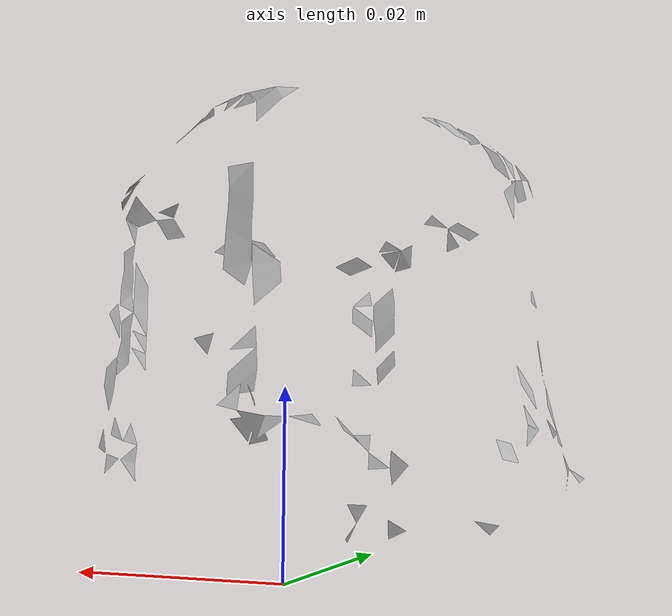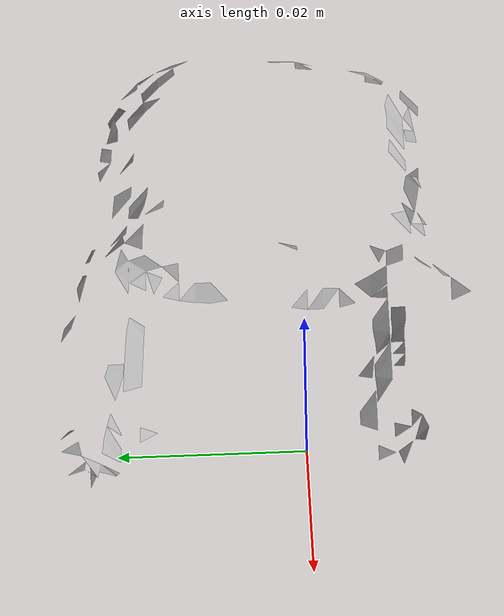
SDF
<?xml version='1.0'?>
<sdf version="1.4">
  <model name="j_lego_duplo">
    <static>false</static>
    <link name="link">
      <inertial>
        <pose>-0.002115114159817157 0.0046936486134799525 0.02532041738840369 -1.4729473700832738 -1.5010686150071304 1.5544267278769124</pose>
        <mass>4.631628658923833e-05</mass>
        <inertia>
          <ixx>9.920232668403805e-09</ixx>
          <ixy>7.224355772217739e-25</ixy>
          <ixz>-3.681749668854277e-26</ixz>
          <iyy>7.58202387868159e-09</iyy>
          <iyz>1.3998029783734858e-25</iyz>
          <izz>7.519936284314493e-09</izz>
        </inertia>
      </inertial>
      <collision name="collision">
        <geometry>
          <mesh>
            <!-- Use a downsampled mesh for collisions -->
            <uri>model://073-j_lego_duplo/tsdf/textured.obj</uri>
	        </mesh>
        </geometry>
        <surface>
      </surface>
      </collision>
      <visual name="visual">
        <geometry>
          <mesh>
            <uri>model://073-j_lego_duplo/tsdf/textured.obj</uri>
	        </mesh>
        </geometry>
        <material>
          <script>
            <uri>model://073-j_lego_duplo/j_lego_duplo.material</uri>
            <name>j_lego_duplo</name>
          </script>
        </material>
      </visual>
    </link>
  </model>
</sdf>
